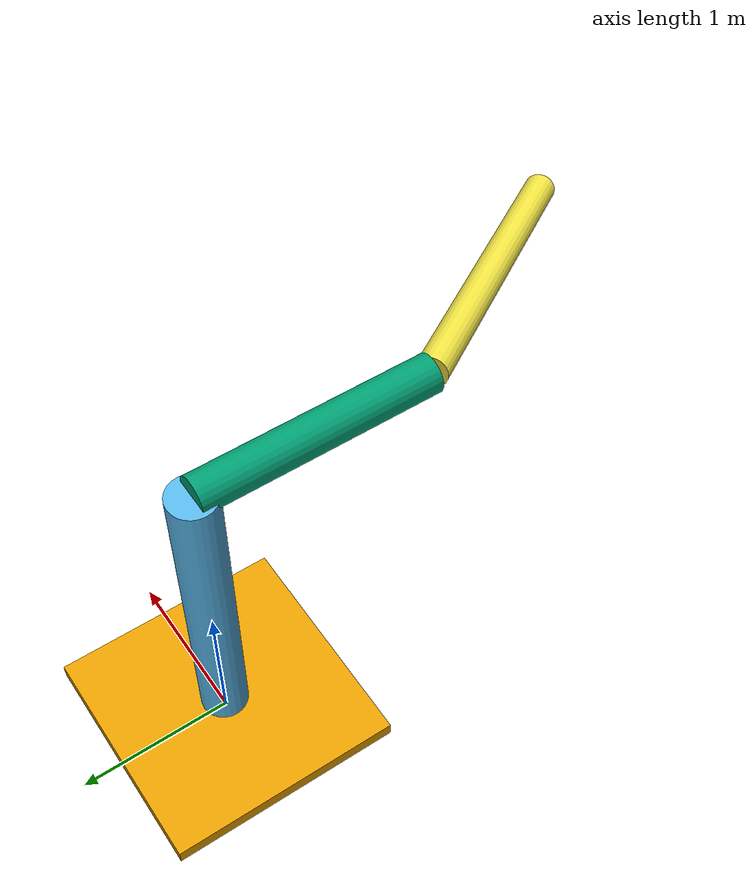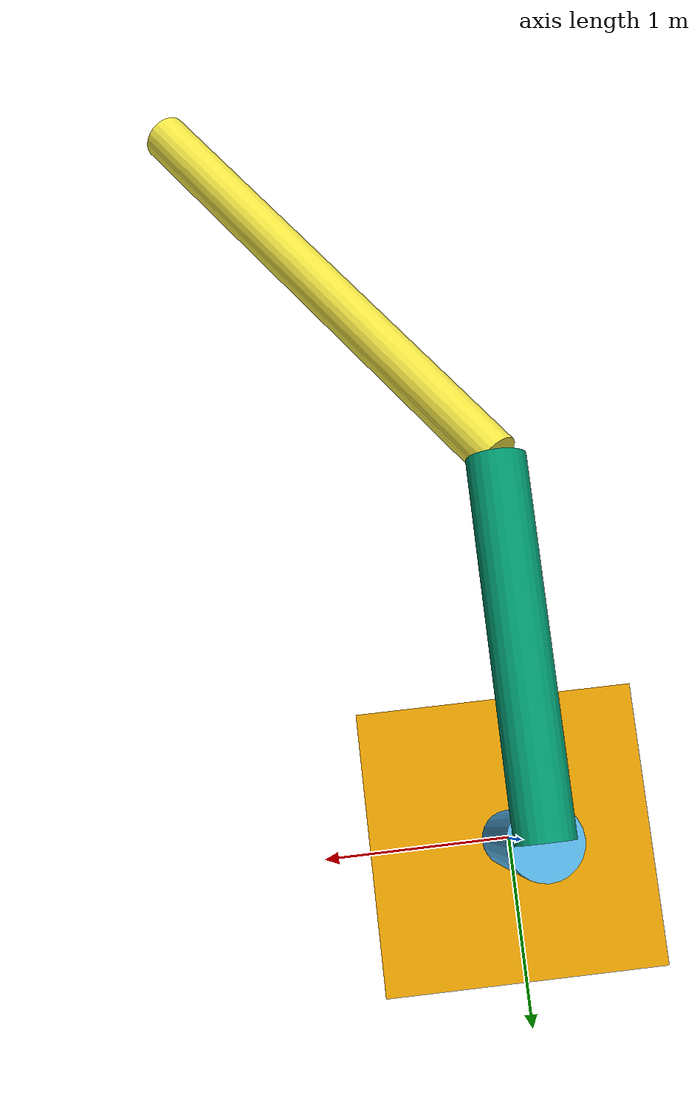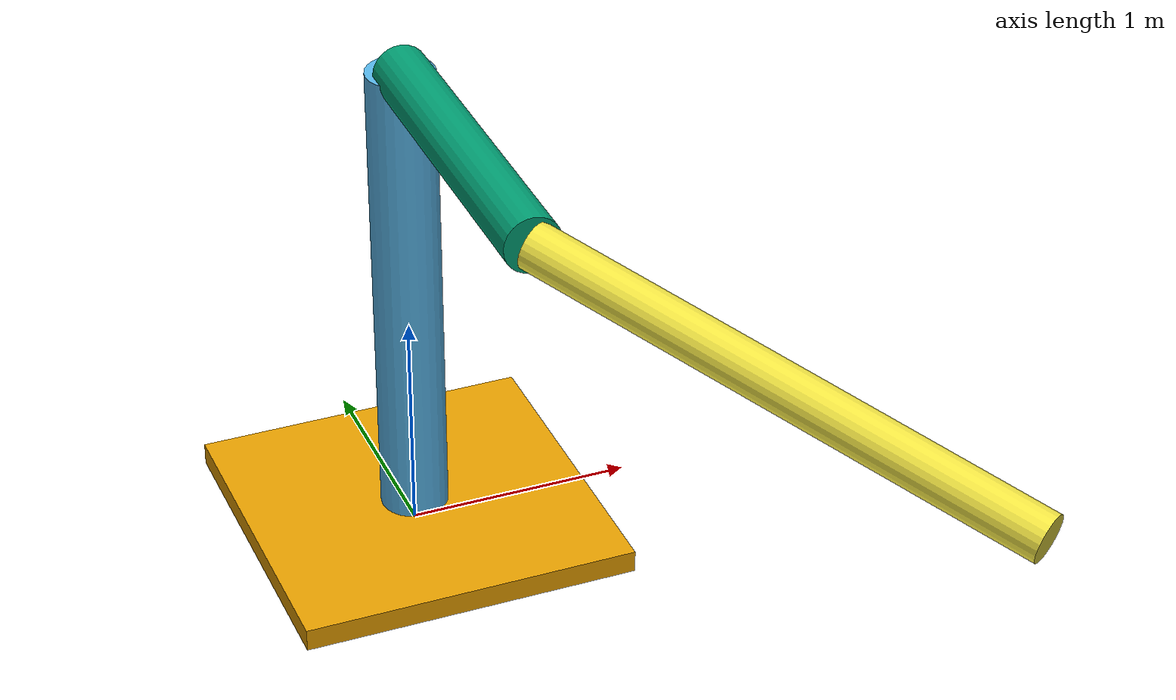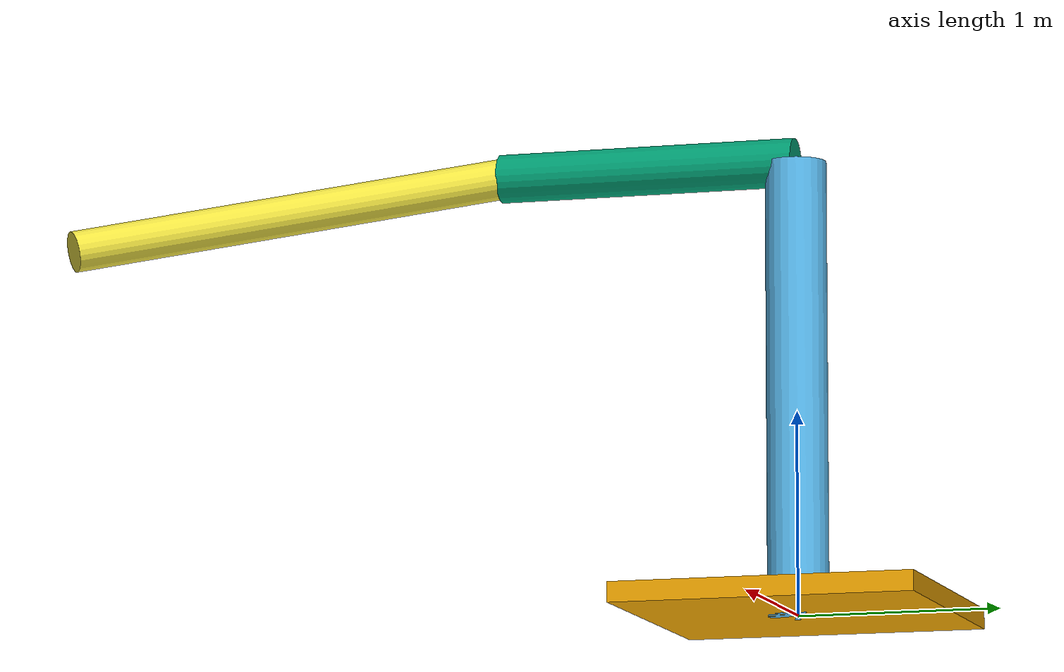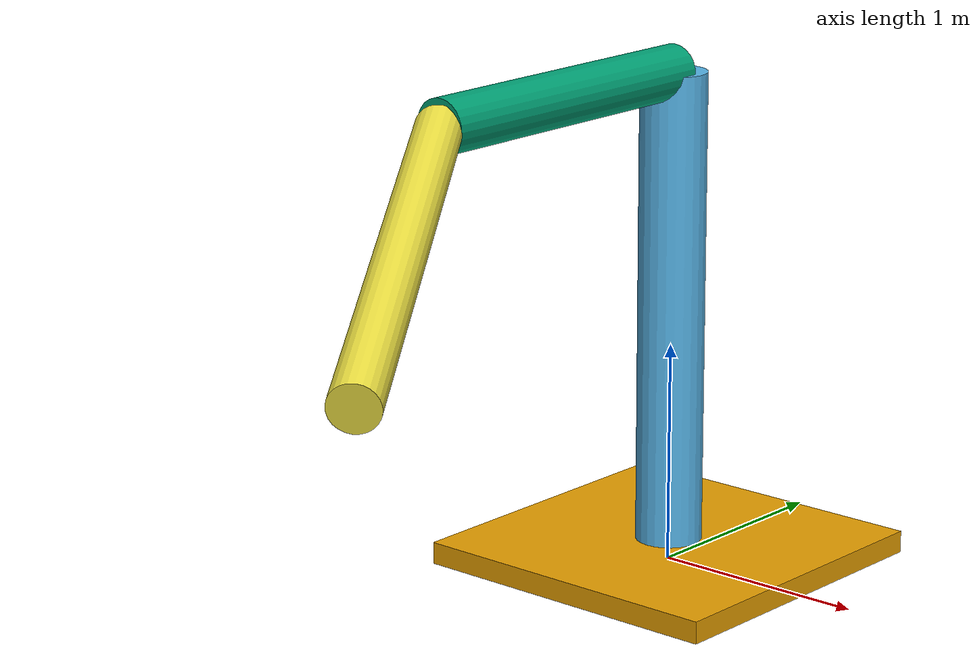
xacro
<?xml version="1.0"?>

<robot name="my_manipulator" xmlns:xacro="http://www.ros.org/wiki/xacro">
	<xacro:include filename="$(find manipulator)/urdf/wzorzec.xacro" />
	<xacro:include filename="$(find manipulator)/urdf/constants.xacro" />

	<my_link_box name="${base}" origin_rpy="0 0 0" origin_xyz="0 0 ${base_height_half}" size="${base_size} ${base_height}" />

	<my_link_cylinder name="${l01}" origin_xyz="${a1/2} 0 ${d2/2}" origin_rpy="0 ${phi2} 0" radius="${R01}" length="${L2}"/>
	<my_link_cylinder name="${l02}" origin_xyz="${a2/2} 0 ${d3/2}" origin_rpy="0 ${phi3} 0" radius="${R02}" length="${L3}"/>
	<my_link_cylinder name="${l03}" origin_xyz="${a3/2} 0 ${d4/2}" origin_rpy="0 ${phi4} 0" radius="${R03}" length="${L4}"/>

	<my_joint name="${base}__${l01}" type="revolute"
		origin_rpy="${rpy_01}" origin_xyz="${xyz_01}"
		parent = "${base}" child = "${l01}"/>
	<my_joint name="${l01}__${l02}" type="revolute"
		origin_rpy="${rpy_02}" origin_xyz="${xyz_02}"
		parent = "${l01}" child = "${l02}"/>
	<my_joint name="${l02}__${l03}" type="revolute"
		origin_rpy="${rpy_03}" origin_xyz="${xyz_03}"
		parent = "${l02}" child = "${l03}"/>

</robot>

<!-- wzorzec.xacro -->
<robot xmlns:xacro="http://www.ros.org/wiki/xacro">

	<xacro:include filename="$(find manipulator)/urdf/constants.xacro" />

	<xacro:macro name="my_link_box" params="name origin_xyz origin_rpy size">
		<link name="${name}">
			<visual>
				<origin xyz="${origin_xyz}" rpy="${origin_rpy}"/>
				<geometry>
					<box size="${size}"/>
				</geometry>
			</visual>
		</link>
	</xacro:macro>

	 <xacro:macro name="my_link_cylinder" params="name origin_xyz origin_rpy radius length">
    <link name="${name}">
    <visual>
        <origin rpy="${origin_rpy}" xyz="${origin_xyz}" />
        <geometry>
          <cylinder radius="${radius}" length="${length}" />
        </geometry>
      </visual>
    </link>
  </xacro:macro>

	<xacro:macro name="my_joint" params="name type origin_rpy origin_xyz parent child">
		<joint name="${name}" type="${type}">
			<axis xyz="0 0 1"/>
			<limit effort="${limit_effort}" lower="${limit_lower}" upper="${limit_upper}" velocity="${limit_velocity}"/>
			<origin xyz = "${origin_xyz}" rpy="${origin_rpy}"/>
			<parent link = "${parent}"/>
			<child link = "${child}"/>
		</joint>
	</xacro:macro>
</robot>

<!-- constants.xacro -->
<robot xmlns:xacro="http://www.ros.org/wiki/xacro">

	<xacro:include filename="$(find manipulator)/urdf/dh.xacro" />

	<xacro:property name="limit_effort"		value="1000.0"	/>
	<xacro:property name="limit_lower"		value="${-pi}"	/>
	<xacro:property name="limit_upper"		value="${pi}"	/>
	<xacro:property name="limit_velocity"	value="0.5"		/>
	<xacro:property name="base_size"		value="1.5 1.5"	/>
	<xacro:property name="base_height"		value="0.1"		/>
	<xacro:property name="base_height_half"	value="${base_height/2.0}" />

	<xacro:property name="base"			value="base_link" 	/>
	<xacro:property name="l01"			value="link_01"		/>
	<xacro:property name="l02"			value="link_02"		/>
	<xacro:property name="l03"			value="link_03"		/>

	<xacro:property name="L01"			value="${a0+d1}"	/>
	<xacro:property name="L02"			value="${a1+d2}"	/>
	<xacro:property name="L03"			value="${a2+d3}"	/>
	<xacro:property name="L04"			value="${a3+d4}"	/>

	<xacro:property name="R01"			value="0.15"			/>
	<xacro:property name="R02"			value="0.12"			/>
	<xacro:property name="R03"			value="0.1"		/>
	<xacro:property name="R04"			value="0.05"		/> <!--to niepotrzebne-->

	<xacro:property name="xyz_01"		value="${a0} 0 ${d1}"	/>
	<xacro:property name="xyz_02"		value="${a1} 0 ${d2}"		/>
	<xacro:property name="xyz_03"		value="${a2} 0 ${d3}"		/>
	<xacro:property name="xyz_04"		value="${a3} 0 ${d4}"		/>
	<xacro:property name="xyz_05"		value="${a4} 0 ${d5}"		/>
	<xacro:property name="xyz_06"		value="${a5} 0 ${d6}"		/>

	<xacro:property name="rpy_01"		value="${alpha0} ${-phi2} 0"		/>
	<xacro:property name="rpy_02"		value="${alpha1} ${-phi3} 0"		/>
	<xacro:property name="rpy_03"		value="${alpha2} ${-phi4} 0"		/>
	<xacro:property name="rpy_04"		value="${alpha3} ${-phi5} 0"		/>
	<xacro:property name="rpy_05"		value="${alpha4} 0 0"		/>
	<xacro:property name="rpy_06"		value="${alpha5} 0 0"		/>

</robot>

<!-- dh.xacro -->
<robot xmlns:xacro="http://www.ros.org/wiki/xacro">
	<xacro:property name="a0"    	value="0"	/>
	<xacro:property name="alpha0"	value="${0}"	/>
	<xacro:property name="d1"    	value="0"	/>

	<xacro:property name="L1"    	value="0.0"	/>

	<xacro:property name="phi1"    	value="0.0"	/>

	<xacro:property name="a1"    	value="1"	/>
	<xacro:property name="alpha1"	value="${pi/2.0}"	/>
	<xacro:property name="d2"    	value="2"	/>

	<xacro:property name="L2"    	value="2.2360679775"	/>

	<xacro:property name="phi2"    	value="0.463647609001"	/>

	<xacro:property name="a2"    	value="0"	/>
	<xacro:property name="alpha2"	value="${pi/2.0}"	/>
	<xacro:property name="d3"    	value="1.5"	/>

	<xacro:property name="L3"    	value="1.5"	/>

	<xacro:property name="phi3"    	value="0.0"	/>

	<xacro:property name="a3"    	value="2"	/>
	<xacro:property name="alpha3"	value="${0}"	/>
	<xacro:property name="d4"    	value="1"	/>

	<xacro:property name="L4"    	value="2.2360679775"	/>

	<xacro:property name="phi4"    	value="1.10714871779"	/>

	<xacro:property name="a4"    	value="0"	/>
	<xacro:property name="alpha4"	value="${0}"	/>
	<xacro:property name="d5"    	value="1"	/>

	<xacro:property name="L5"    	value="1.0"	/>

	<xacro:property name="phi5"    	value="0.0"	/>

</robot>
